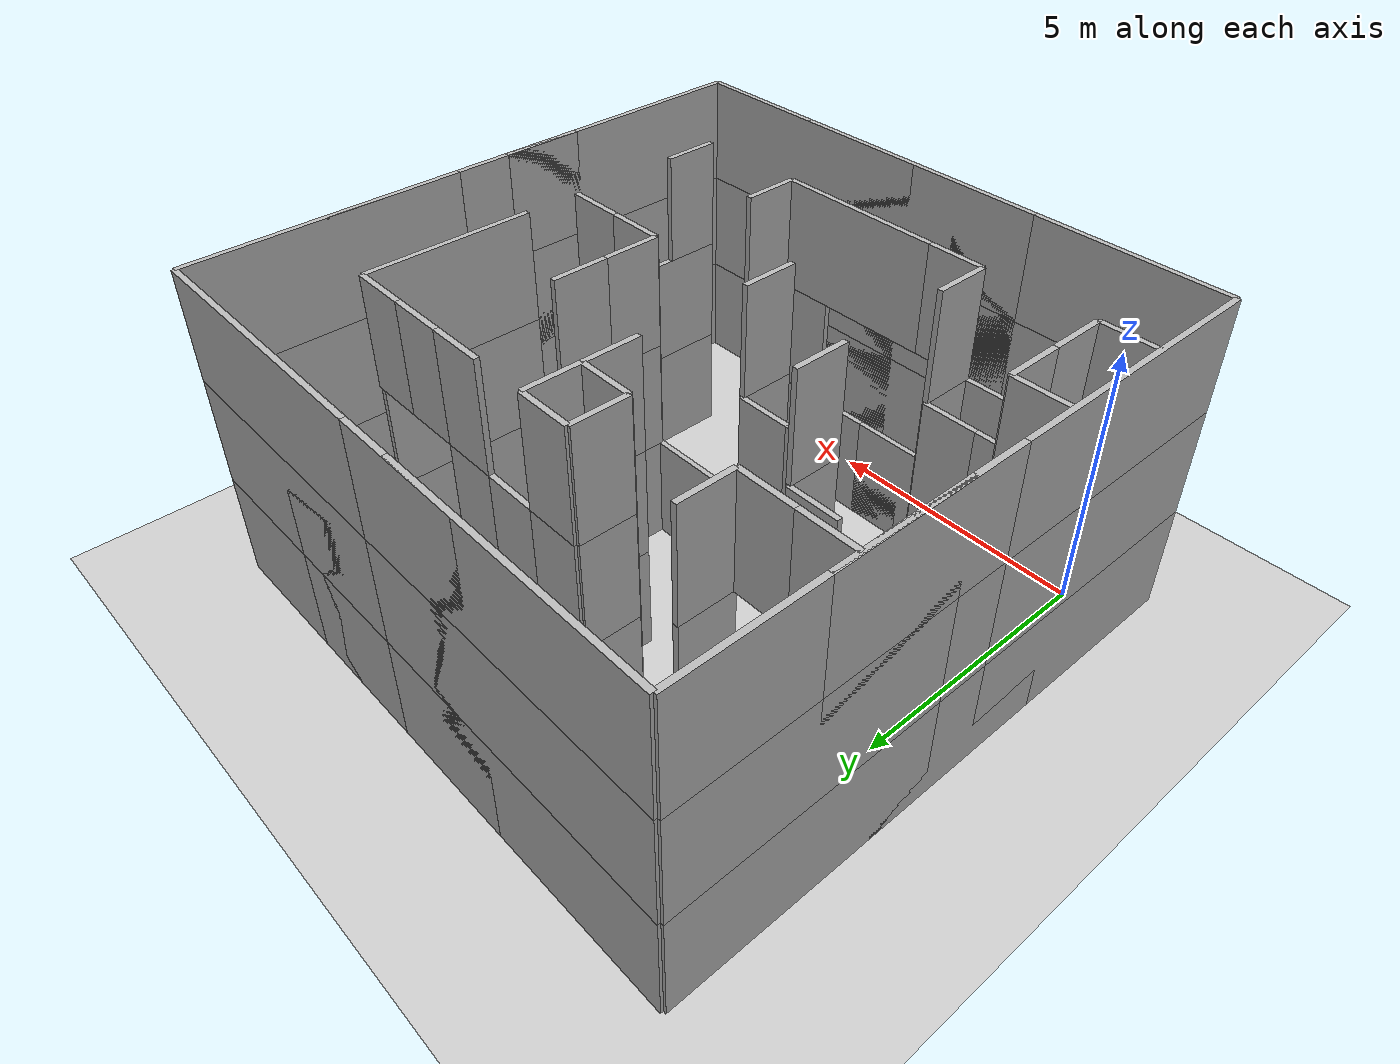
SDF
<?xml version="1.0" ?>
<sdf version="1.4">
  <world name="default">
    <include>
      <uri>model://ground_plane</uri>
    </include>
    <include>
      <uri>model://sun</uri>
    </include>

    <!-- Only one ROS interface plugin is required per world, as any other plugin can connect a Gazebo
         topic to a ROS topic (or vise versa). -->
    <plugin name="ros_interface_plugin" filename="librotors_gazebo_ros_interface_plugin.so"/>

    <spherical_coordinates>
      <surface_model>EARTH_WGS84</surface_model>
      <latitude_deg>47.3667</latitude_deg>
      <longitude_deg>8.5500</longitude_deg>
      <elevation>500.0</elevation>
      <heading_deg>0</heading_deg>
    </spherical_coordinates>
    <physics type='ode'>
      <ode>
        <solver>
          <type>quick</type>
          <iters>1000</iters>
          <sor>1.3</sor>
        </solver>
        <constraints>
          <cfm>0</cfm>
          <erp>0.2</erp>
          <contact_max_correcting_vel>100</contact_max_correcting_vel>
          <contact_surface_layer>0.001</contact_surface_layer>
        </constraints>
      </ode>
      <max_step_size>0.01</max_step_size>
      <real_time_factor>1</real_time_factor>
      <real_time_update_rate>100</real_time_update_rate>
      <gravity>0 0 -9.8</gravity>
    </physics>

    <include>
      <name>wall 1</name>
      <uri>model://wall5</uri>
      <pose>-1 1.5 1 0 0 0</pose>
    </include>
    <include>
      <name>wall 2</name>
      <uri>model://wall5</uri>
      <pose>-1 7.5 1 0 0 0</pose>
    </include>
    <include>
      <name>wall 3</name>
      <uri>model://wall5</uri>
      <pose>-1 5 1 0 0 0</pose>
    </include>

    <include>
      <name>wall 7</name>
      <uri>model://wall5</uri>
      <pose>10 1.5 1 0 0 0</pose>
    </include>
    <include>
      <name>wall 8</name>
      <uri>model://wall5</uri>
      <pose>10 7.5 1 0 0 0</pose>
    </include>
    <include>
      <name>wall 9</name>
      <uri>model://wall5</uri>
      <pose>10 5 1 0 0 0</pose>
    </include>

    <include>
      <name>wall 4</name>
      <uri>model://wall5</uri>
      <pose>1.5 -1 1 0 0 1.57079632679</pose>
    </include>
    <include>
      <name>wall 5</name>
      <uri>model://wall5</uri>
      <pose>7.5 -1 1 0 0 1.57079632679</pose>
    </include>
    <include>
      <name>wall 6</name>
      <uri>model://wall5</uri>
      <pose>5 -1 1 0 0 1.57079632679</pose>
    </include>

    <include>
      <name>wall 10</name>
      <uri>model://wall5</uri>
      <pose>1.5 10 1 0 0 1.57079632679</pose>
    </include>
    <include>
      <name>wall 11</name>
      <uri>model://wall5</uri>
      <pose>7.5 10 1 0 0 1.57079632679</pose>
    </include>
    <include>
      <name>wall 12</name>
      <uri>model://wall5</uri>
      <pose>5 10 1 0 0 1.57079632679</pose>
    </include>

    <include>
      <name>wall 13</name>
      <uri>model://wall5</uri>
      <pose>1.5 1 1 0 0 1.57079632679</pose>
    </include>
    <include>
      <name>wall 14</name>
      <uri>model://wall3</uri>
      <pose>4.5 1 1 0 0 1.57079632679</pose>
    </include>

    <include>
      <name>wall 15</name>
      <uri>model://wall3</uri>
      <pose>8 2.5 1 0 0 0</pose>
    </include>
    <include>
      <name>wall 16</name>
      <uri>model://wall</uri>
      <pose>6 4.5 1 0 0 0</pose>
    </include>

    <include>
      <name>wall 17</name>
      <uri>model://wall</uri>
      <pose>6 1.5 1 0 0 0</pose>
    </include>
    <include>
      <name>wall 18</name>
      <uri>model://wall</uri>
      <pose>2 1.5 1 0 0 0</pose>
    </include>
    <include>
      <name>wall 19</name>
      <uri>model://wall</uri>
      <pose> 0 2.5 1 0 0 0</pose>
    </include>
    <include>
      <name>wall 20</name>
      <uri>model://wall5</uri>
      <pose>5.5 4 1 0 0 1.57079632679</pose>
    </include>
    <include>
      <name>wall 21</name>
      <uri>model://wall</uri>
      <pose>4 3.5 1 0 0 0</pose>
    </include>
    <include>
      <name>wall 22</name>
      <uri>model://wall</uri>
      <pose>2.5 4 1 0 0 1.57079632679</pose>
    </include>
    <include>
      <name>wall 23</name>
      <uri>model://wall</uri>
      <pose>0.5 2 1 0 0 1.57079632679</pose>
    </include>
    <include>
      <name>wall 24</name>
      <uri>model://wall</uri>
      <pose>1.5 2 1 0 0 1.57079632679</pose>
    </include>
    <include>
      <name>wall 25</name>
      <uri>model://wall</uri>
      <pose>-0.5 3 1 0 0 1.57079632679</pose>
    </include>
    <include>
      <name>wall 26</name>
      <uri>model://wall</uri>
      <pose>2 4.5 1 0 0 0</pose>
    </include>
    <include>
      <name>wall 27</name>
      <uri>model://wall</uri>
      <pose>1.5 5 1 0 0 1.57079632679</pose>
    </include>

    <include>
      <name>wall 28</name>
      <uri>model://wall</uri>
      <pose>0.5 7 1 0 0 1.57079632679</pose>
    </include>
    <include>
      <name>wall 29</name>
      <uri>model://wall</uri>
      <pose>1 7.5 1 0 0 0</pose>
    </include>
    <include>
      <name>wall 30</name>
      <uri>model://wall3</uri>
      <pose>8 6.5 1 0 0 0</pose>
    </include>

    <include>
      <name>wall 31</name>
      <uri>model://wall</uri>
      <pose>-0.5 7 1 0 0 1.57079632679</pose>
    </include>

    <include>
      <name>wall 32</name>
      <uri>model://wall</uri>
      <pose>6 5.5 1 0 0 0</pose>
    </include>

    <include>
      <name>wall 33</name>
      <uri>model://wall5</uri>
      <pose> 5.5 8 1 0 0 1.57079632679</pose>
    </include>

    <include>
      <name>wall 34</name>
      <uri>model://wall</uri>
      <pose>3.5 7 1 0 0 1.57079632679</pose>
    </include>

    <include>
      <name>wall 35</name>
      <uri>model://wall</uri>
      <pose>3 7.5 1 0 0 0</pose>
    </include>

    <include>
      <name>wall 36</name>
      <uri>model://wall</uri>
      <pose>4 6.5 1 0 0 0</pose>
    </include>

    <include>
      <name>wall 36a</name>
      <uri>model://wall</uri>
      <pose>4 7.5 1 0 0 0</pose>
    </include>

    <include>
      <name>wall 37</name>
      <uri>model://wall5</uri>
      <pose>-1 1.5 3 0 0 0</pose>
    </include>
    <include>
      <name>wall 38</name>
      <uri>model://wall5</uri>
      <pose>-1 7.5 3 0 0 0</pose>
    </include>
    <include>
      <name>wall 39</name>
      <uri>model://wall5</uri>
      <pose>-1 5 3 0 0 0</pose>
    </include>

    <include>
      <name>wall 40</name>
      <uri>model://wall5</uri>
      <pose>10 1.5 3 0 0 0</pose>
    </include>
    <include>
      <name>wall 41</name>
      <uri>model://wall5</uri>
      <pose>10 7.5 3 0 0 0</pose>
    </include>
    <include>
      <name>wall 42</name>
      <uri>model://wall5</uri>
      <pose>10 5 3 0 0 0</pose>
    </include>

    <include>
      <name>wall 43</name>
      <uri>model://wall5</uri>
      <pose>1.5 -1 3 0 0 1.57079632679</pose>
    </include>
    <include>
      <name>wall 44</name>
      <uri>model://wall5</uri>
      <pose>7.5 -1 3 0 0 1.57079632679</pose>
    </include>
    <include>
      <name>wall 45</name>
      <uri>model://wall5</uri>
      <pose>5 -1 3 0 0 1.57079632679</pose>
    </include>

    <include>
      <name>wall 46</name>
      <uri>model://wall5</uri>
      <pose>1.5 10 3 0 0 1.57079632679</pose>
    </include>
    <include>
      <name>wall 47</name>
      <uri>model://wall5</uri>
      <pose>7.5 10 3 0 0 1.57079632679</pose>
    </include>
    <include>
      <name>wall 48</name>
      <uri>model://wall5</uri>
      <pose>5 10 3 0 0 1.57079632679</pose>
    </include>

    <include>
      <name>wall 49</name>
      <uri>model://wall3</uri>
      <pose>0.5 1 3 0 0 1.57079632679</pose>
    </include>

    <include>
      <name>wall 50</name>
      <uri>model://wall</uri>
      <pose>5.5 1 3 0 0 1.57079632679</pose>
    </include>

    <include>
      <name>wall 51</name>
      <uri>model://wall3</uri>
      <pose>8 2.5 3 0 0 0</pose>
    </include>
    <include>
      <name>wall 52</name>
      <uri>model://wall</uri>
      <pose>6 4.5 3 0 0 0</pose>
    </include>

    <include>
      <name>wall 53</name>
      <uri>model://wall</uri>
      <pose>6 1.5 3 0 0 0</pose>
    </include>
    <include>
      <name>wall 54</name>
      <uri>model://wall</uri>
      <pose>2 1.5 3 0 0 0</pose>
    </include>
    <include>
      <name>wall 55</name>
      <uri>model://wall</uri>
      <pose> 0 2.5 3 0 0 0</pose>
    </include>
    <include>
      <name>wall 56</name>
      <uri>model://wall</uri>
      <pose>3.5 4 3 0 0 1.57079632679</pose>
    </include>
    <include>
      <name>wall 56b</name>
      <uri>model://wall</uri>
      <pose>6.5 4 3 0 0 1.57079632679</pose>
    </include>
    <include>
      <name>wall 56c</name>
      <uri>model://wall</uri>
      <pose>7.5 4 3 0 0 1.57079632679</pose>
    </include>

    <include>
      <name>wall 57</name>
      <uri>model://wall</uri>
      <pose>4 3.5 3 0 0 0</pose>
    </include>
    <include>
      <name>wall 58</name>
      <uri>model://wall</uri>
      <pose>2.5 4 3 0 0 1.57079632679</pose>
    </include>
    <include>
      <name>wall 59</name>
      <uri>model://wall</uri>
      <pose>0.5 2 3 0 0 1.57079632679</pose>
    </include>
    <include>
      <name>wall 60</name>
      <uri>model://wall</uri>
      <pose>1.5 2 3 0 0 1.57079632679</pose>
    </include>
    <include>
      <name>wall 61</name>
      <uri>model://wall</uri>
      <pose>-0.5 3 3 0 0 1.57079632679</pose>
    </include>
    <include>
      <name>wall 62</name>
      <uri>model://wall</uri>
      <pose>2 4.5 3 0 0 0</pose>
    </include>
    <include>
      <name>wall 63</name>
      <uri>model://wall</uri>
      <pose>1.5 5 3 0 0 1.57079632679</pose>
    </include>

    <include>
      <name>wall 65</name>
      <uri>model://wall</uri>
      <pose>1 7.5 3 0 0 0</pose>
    </include>
    <include>
      <name>wall 66</name>
      <uri>model://wall3</uri>
      <pose>8 6.5 3 0 0 0</pose>
    </include>

    <include>
      <name>wall 69</name>
      <uri>model://wall</uri>
      <pose> 3.5 8 3 0 0 1.57079632679</pose>
    </include>
    <include>
      <name>wall 69b</name>
      <uri>model://wall</uri>
      <pose> 4.5 8 3 0 0 1.57079632679</pose>
    </include>
    <include>
      <name>wall 69c</name>
      <uri>model://wall</uri>
      <pose> 5.5 8 3 0 0 1.57079632679</pose>
    </include>

    <include>
      <name>wall 70</name>
      <uri>model://wall</uri>
      <pose>3.5 7 3 0 0 1.57079632679</pose>
    </include>

    <include>
      <name>wall 71</name>
      <uri>model://wall</uri>
      <pose>3 7.5 3 0 0 0</pose>
    </include>

    <include>
      <name>wall 72</name>
      <uri>model://wall</uri>
      <pose>4 6.5 3 0 0 0</pose>
    </include>

    <include>
      <name>wall 73</name>
      <uri>model://wall</uri>
      <pose>4 7.5 3 0 0 0</pose>
    </include>

    <include>
      <name>wall 74</name>
      <uri>model://wall5</uri>
      <pose>-1 1.5 5 0 0 0</pose>
    </include>
    <include>
      <name>wall 75</name>
      <uri>model://wall5</uri>
      <pose>-1 7.5 5 0 0 0</pose>
    </include>
    <include>
      <name>wall 76</name>
      <uri>model://wall5</uri>
      <pose>-1 5 5 0 0 0</pose>
    </include>

    <include>
      <name>wall 77</name>
      <uri>model://wall5</uri>
      <pose>10 1.5 5 0 0 0</pose>
    </include>
    <include>
      <name>wall 78</name>
      <uri>model://wall5</uri>
      <pose>10 7.5 5 0 0 0</pose>
    </include>
    <include>
      <name>wall 79</name>
      <uri>model://wall5</uri>
      <pose>10 5 5 0 0 0</pose>
    </include>

    <include>
      <name>wall 80</name>
      <uri>model://wall5</uri>
      <pose>1.5 -1 5 0 0 1.57079632679</pose>
    </include>
    <include>
      <name>wall 81</name>
      <uri>model://wall5</uri>
      <pose>7.5 -1 5 0 0 1.57079632679</pose>
    </include>
    <include>
      <name>wall 82</name>
      <uri>model://wall5</uri>
      <pose>5 -1 5 0 0 1.57079632679</pose>
    </include>

    <include>
      <name>wall 83</name>
      <uri>model://wall5</uri>
      <pose>1.5 10 5 0 0 1.57079632679</pose>
    </include>
    <include>
      <name>wall 84</name>
      <uri>model://wall5</uri>
      <pose>7.5 10 5 0 0 1.57079632679</pose>
    </include>
    <include>
      <name>wall 85</name>
      <uri>model://wall5</uri>
      <pose>5 10 5 0 0 1.57079632679</pose>
    </include>

    <include>
      <name>wall 86</name>
      <uri>model://wall</uri>
      <pose>-0.5 1 5 0 0 1.57079632679</pose>
    </include>
    <include>
      <name>wall 87</name>
      <uri>model://wall3</uri>
      <pose>4.5 1 5 0 0 1.57079632679</pose>
    </include>
    <include>
      <name>wall 87b</name>
      <uri>model://wall</uri>
      <pose>2.5 1 5 0 0 1.57079632679</pose>
    </include>

    <include>
      <name>wall 88</name>
      <uri>model://wall</uri>
      <pose>8 1.5 5 0 0 0</pose>
    </include>

    <include>
      <name>wall 89</name>
      <uri>model://wall</uri>
      <pose>6 4.5 5 0 0 0</pose>
    </include>

    <include>
      <name>wall 90</name>
      <uri>model://wall</uri>
      <pose>6 1.5 5 0 0 0</pose>
    </include>
    <include>
      <name>wall 91</name>
      <uri>model://wall</uri>
      <pose>2 1.5 5 0 0 0</pose>
    </include>
    <include>
      <name>wall 92</name>
      <uri>model://wall</uri>
      <pose> 0 2.5 5 0 0 0</pose>
    </include>
    <include>
      <name>wall 92b</name>
      <uri>model://wall</uri>
      <pose> 0 1.5 5 0 0 0</pose>
    </include>
    <include>
      <name>wall 93</name>
      <uri>model://wall</uri>
      <pose>6.5 4 5 0 0 1.57079632679</pose>
    </include>
    <include>
      <name>wall 93b</name>
      <uri>model://wall</uri>
      <pose>7.5 4 5 0 0 1.57079632679</pose>
    </include>

    <include>
      <name>wall 94</name>
      <uri>model://wall</uri>
      <pose>4 3.5 5 0 0 0</pose>
    </include>
    <include>
      <name>wall 98</name>
      <uri>model://wall</uri>
      <pose>-0.5 3 5 0 0 1.57079632679</pose>
    </include>
    <include>
      <name>wall 99</name>
      <uri>model://wall</uri>
      <pose>2 4.5 5 0 0 0</pose>
    </include>

    <include>
      <name>wall 101</name>
      <uri>model://wall</uri>
      <pose>0.5 7 5 0 0 1.57079632679</pose>
    </include>
    <include>
      <name>wall 102</name>
      <uri>model://wall</uri>
      <pose>1 7.5 5 0 0 0</pose>
    </include>
    <include>
      <name>wall 103</name>
      <uri>model://wall3</uri>
      <pose>8 6.5 5 0 0 0</pose>
    </include>

    <include>
      <name>wall 104</name>
      <uri>model://wall</uri>
      <pose>-0.5 7 5 0 0 1.57079632679</pose>
    </include>

    <include>
      <name>wall 105</name>
      <uri>model://wall</uri>
      <pose>6 5.5 5 0 0 0</pose>
    </include>

    <include>
      <name>wall 106</name>
      <uri>model://wall</uri>
      <pose> 3.5 8 5 0 0 1.57079632679</pose>
    </include>
    <include>
      <name>wall 106b</name>
      <uri>model://wall</uri>
      <pose> 5.5 8 5 0 0 1.57079632679</pose>
    </include>
    <include>
      <name>wall 106c</name>
      <uri>model://wall</uri>
      <pose> 6.5 8 5 0 0 1.57079632679</pose>
    </include>
    <include>
      <name>wall 106d</name>
      <uri>model://wall</uri>
      <pose> 7.5 8 5 0 0 1.57079632679</pose>
    </include>

    <include>
      <name>wall 107</name>
      <uri>model://wall</uri>
      <pose>3.5 7 5 0 0 1.57079632679</pose>
    </include>

    <include>
      <name>wall 108</name>
      <uri>model://wall</uri>
      <pose>3 7.5 5 0 0 0</pose>
    </include>

    <include>
      <name>wall 109</name>
      <uri>model://wall</uri>
      <pose>4 6.5 5 0 0 0</pose>
    </include>

    <include>
      <name>wall 110</name>
      <uri>model://wall</uri>
      <pose>4 7.5 5 0 0 0</pose>
    </include>

    <plugin name="GazeboPlugin" filename="/home/ananda/ROS/GazeboPlugin/export/lib/libGazeboCoSimPlugin.so"><portNumber>14581</portNumber></plugin>

  </world>
</sdf>

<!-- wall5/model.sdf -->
<sdf version="1.5">
    <model name='unit_box'>
      <static>1</static>
      <pose frame=''>0 0 0 0 0 0</pose>
      <link name='link'>
        <inertial>
          <mass>1</mass>
          <inertia>
            <ixx>0.166667</ixx>
            <ixy>0</ixy>
            <ixz>0</ixz>
            <iyy>0.166667</iyy>
            <iyz>0</iyz>
            <izz>0.166667</izz>
          </inertia>
          <pose frame=''>0 0 0 0 -0 0</pose>
        </inertial>
        <collision name='collision'>
          <geometry>
            <box>
              <size>0.1 5 2</size>
            </box>
          </geometry>
          <max_contacts>10</max_contacts>
          <surface>
            <contact>
              <ode/>
            </contact>
            <bounce/>
            <friction>
              <torsional>
                <ode/>
              </torsional>
              <ode/>
            </friction>
          </surface>
        </collision>
        <visual name='visual'>
          <geometry>
            <box>
              <size>0.1 5 2</size>
            </box>
          </geometry>
            <material>
                <script>
                    <uri>model://wall/scripts/repeated.material</uri>
                    <name>Wall</name>
                </script>
            </material>
        </visual>
        <self_collide>0</self_collide>
        <enable_wind>0</enable_wind>
        <kinematic>0</kinematic>
      </link>
    </model>
</sdf>

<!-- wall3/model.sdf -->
<sdf version="1.5">
    <model name='unit_box'>
      <static>1</static>
      <pose frame=''>0 0 0 0 0 0</pose>
      <link name='link'>
        <inertial>
          <mass>1</mass>
          <inertia>
            <ixx>0.166667</ixx>
            <ixy>0</ixy>
            <ixz>0</ixz>
            <iyy>0.166667</iyy>
            <iyz>0</iyz>
            <izz>0.166667</izz>
          </inertia>
          <pose frame=''>0 0 0 0 -0 0</pose>
        </inertial>
        <collision name='collision'>
          <geometry>
            <box>
              <size>0.1 3 2</size>
            </box>
          </geometry>
          <max_contacts>10</max_contacts>
          <surface>
            <contact>
              <ode/>
            </contact>
            <bounce/>
            <friction>
              <torsional>
                <ode/>
              </torsional>
              <ode/>
            </friction>
          </surface>
        </collision>
        <visual name='visual'>
          <geometry>
            <box>
              <size>0.1 3 2</size>
            </box>
          </geometry>
            <material>
                <script>
                    <uri>model://wall/scripts/repeated.material</uri>
                    <name>Wall</name>
                </script>
            </material>
        </visual>
        <self_collide>0</self_collide>
        <enable_wind>0</enable_wind>
        <kinematic>0</kinematic>
      </link>
    </model>
</sdf>

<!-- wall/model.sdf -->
<sdf version="1.5">
    <model name='unit_box'>
      <static>1</static>
      <pose frame=''>0 0 0 0 0 0</pose>
      <link name='link'>
        <inertial>
          <mass>1</mass>
          <inertia>
            <ixx>0.166667</ixx>
            <ixy>0</ixy>
            <ixz>0</ixz>
            <iyy>0.166667</iyy>
            <iyz>0</iyz>
            <izz>0.166667</izz>
          </inertia>
          <pose frame=''>0 0 0 0 -0 0</pose>
        </inertial>
        <collision name='collision'>
          <geometry>
            <box>
              <size>0.1 1 2</size>
            </box>
          </geometry>
          <max_contacts>10</max_contacts>
          <surface>
            <contact>
              <ode/>
            </contact>
            <bounce/>
            <friction>
              <torsional>
                <ode/>
              </torsional>
              <ode/>
            </friction>
          </surface>
        </collision>
        <visual name='visual'>
          <geometry>
            <box>
              <size>0.1 1 2</size>
            </box>
          </geometry>
            <material>
                <script>
                    <uri>model://wall/scripts/repeated.material</uri>
                    <name>Wall</name>
                </script>
            </material>
        </visual>
        <self_collide>0</self_collide>
        <enable_wind>0</enable_wind>
        <kinematic>0</kinematic>
      </link>
    </model>
</sdf>
